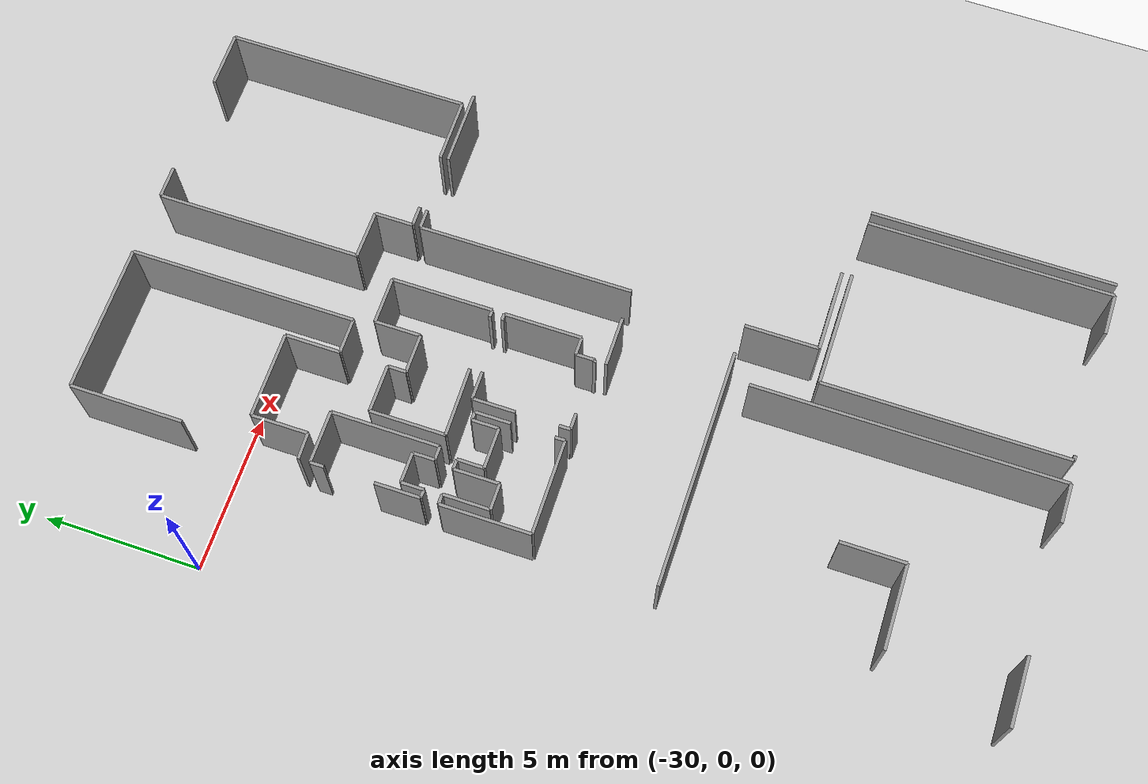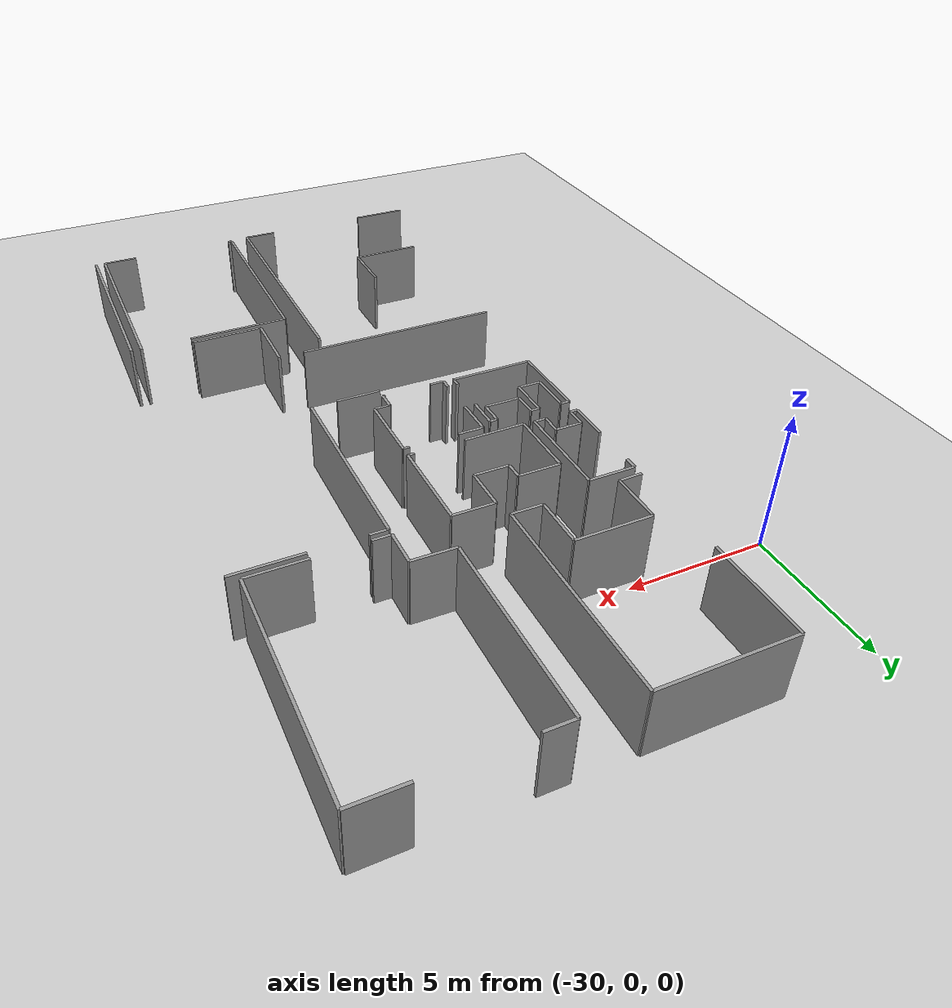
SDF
<sdf version="1.6">
 <world name="default">
  <model name="ground_plane">
   <static>1</static>
   <link name="link">
    <collision name="collision">
     <geometry><plane><normal>0 0 1</normal><size>100 100</size></plane></geometry>
     <surface><friction><ode><mu>100</mu><mu2>50</mu2></ode></friction></surface>
    </collision>
    <visual name="visual">
     <cast_shadows>0</cast_shadows>
     <geometry><plane><normal>0 0 1</normal><size>100 100</size></plane></geometry>
     <material>
      <script><uri>file://media/materials/scripts/gazebo.material</uri><name>Gazebo/Grey</name></script>
     </material>
    </visual>
   </link>
  </model>
  <model name="0510035343_A_40_1_102">
   <static>1</static>
   <link name="Wall_206">
    <collision name="Wall_206_Collision">
     <geometry><box><size>9.78107842204 0.1 2.5</size></box></geometry>
     <pose>4.89053921102 0 1.25 0 0 0</pose>
    </collision>
    <visual name="Wall_206_Visual">
     <pose>4.89053921102 0 1.25 0 0 0</pose>
     <geometry><box><size>9.78107842204 0.1 2.5</size></box></geometry>
     <material>
      <script><uri>file://media/materials/scripts/gazebo.material</uri><name>Gazebo/Grey</name></script>
      <ambient>1 1 1 1</ambient>
     </material>
    </visual>
    <pose>96.7230949887 -38.3141324701 0 0 0 -1.57079632679</pose>
   </link>
   <link name="Wall_207">
    <collision name="Wall_207_Collision">
     <geometry><box><size>1.25703767178 0.1 2.5</size></box></geometry>
     <pose>0.628518835888 0 1.25 0 0 0</pose>
    </collision>
    <visual name="Wall_207_Visual">
     <pose>0.628518835888 0 1.25 0 0 0</pose>
     <geometry><box><size>1.25703767178 0.1 2.5</size></box></geometry>
     <material>
      <script><uri>file://media/materials/scripts/gazebo.material</uri><name>Gazebo/Grey</name></script>
      <ambient>1 1 1 1</ambient>
     </material>
    </visual>
    <pose>96.7230949887 -48.0952108921 0 0 0 3.14159265359</pose>
   </link>
   <link name="Wall_208">
    <collision name="Wall_208_Collision">
     <geometry><box><size>2.1692849662 0.1 2.5</size></box></geometry>
     <pose>1.0846424831 0 1.25 0 0 0</pose>
    </collision>
    <visual name="Wall_208_Visual">
     <pose>1.0846424831 0 1.25 0 0 0</pose>
     <geometry><box><size>2.1692849662 0.1 2.5</size></box></geometry>
     <material>
      <script><uri>file://media/materials/scripts/gazebo.material</uri><name>Gazebo/Grey</name></script>
      <ambient>1 1 1 1</ambient>
     </material>
    </visual>
    <pose>91.3575168999 -48.0952108921 0 0 0 3.14159265359</pose>
   </link>
   <link name="Wall_223">
    <collision name="Wall_223_Collision">
     <geometry><box><size>1.59395728205 0.1 2.5</size></box></geometry>
     <pose>0.796978641023 0 1.25 0 0 0</pose>
    </collision>
    <visual name="Wall_223_Visual">
     <pose>0.796978641023 0 1.25 0 0 0</pose>
     <geometry><box><size>1.59395728205 0.1 2.5</size></box></geometry>
     <material>
      <script><uri>file://media/materials/scripts/gazebo.material</uri><name>Gazebo/Grey</name></script>
      <ambient>1 1 1 1</ambient>
     </material>
    </visual>
    <pose>95.9898441715 -34.0738201784 0 0 0 0.0</pose>
   </link>
   <link name="Wall_224">
    <collision name="Wall_224_Collision">
     <geometry><box><size>7.61408786827 0.1 2.5</size></box></geometry>
     <pose>3.80704393413 0 1.25 0 0 0</pose>
    </collision>
    <visual name="Wall_224_Visual">
     <pose>3.80704393413 0 1.25 0 0 0</pose>
     <geometry><box><size>7.61408786827 0.1 2.5</size></box></geometry>
     <material>
      <script><uri>file://media/materials/scripts/gazebo.material</uri><name>Gazebo/Grey</name></script>
      <ambient>1 1 1 1</ambient>
     </material>
    </visual>
    <pose>97.5838014536 -37.6189660097 0 0 0 3.14002541355</pose>
   </link>
   <link name="Wall_226">
    <collision name="Wall_226_Collision">
     <geometry><box><size>3.59008537243 0.1 2.5</size></box></geometry>
     <pose>1.79504268622 0 1.25 0 0 0</pose>
    </collision>
    <visual name="Wall_226_Visual">
     <pose>1.79504268622 0 1.25 0 0 0</pose>
     <geometry><box><size>3.59008537243 0.1 2.5</size></box></geometry>
     <material>
      <script><uri>file://media/materials/scripts/gazebo.material</uri><name>Gazebo/Grey</name></script>
      <ambient>1 1 1 1</ambient>
     </material>
    </visual>
    <pose>90.2804912882 -22.7536259481 0 0 0 1.57079632679</pose>
   </link>
   <link name="Wall_227">
    <collision name="Wall_227_Collision">
     <geometry><box><size>4.66711098416 0.1 2.5</size></box></geometry>
     <pose>2.33355549208 0 1.25 0 0 0</pose>
    </collision>
    <visual name="Wall_227_Visual">
     <pose>2.33355549208 0 1.25 0 0 0</pose>
     <geometry><box><size>4.66711098416 0.1 2.5</size></box></geometry>
     <material>
      <script><uri>file://media/materials/scripts/gazebo.material</uri><name>Gazebo/Grey</name></script>
      <ambient>1 1 1 1</ambient>
     </material>
    </visual>
    <pose>90.2804912882 -19.1635405757 0 0 0 0.0</pose>
   </link>
   <link name="Wall_228">
    <collision name="Wall_228_Collision">
     <geometry><box><size>7.21850899743 0.1 2.5</size></box></geometry>
     <pose>3.60925449871 0 1.25 0 0 0</pose>
    </collision>
    <visual name="Wall_228_Visual">
     <pose>3.60925449871 0 1.25 0 0 0</pose>
     <geometry><box><size>7.21850899743 0.1 2.5</size></box></geometry>
     <material>
      <script><uri>file://media/materials/scripts/gazebo.material</uri><name>Gazebo/Grey</name></script>
      <ambient>1 1 1 1</ambient>
     </material>
    </visual>
    <pose>94.9476022724 -19.1635405757 0 0 0 -1.57079632679</pose>
   </link>
   <link name="Wall_229">
    <collision name="Wall_229_Collision">
     <geometry><box><size>1.11485607287 0.1 2.5</size></box></geometry>
     <pose>0.557428036434 0 1.25 0 0 0</pose>
    </collision>
    <visual name="Wall_229_Visual">
     <pose>0.557428036434 0 1.25 0 0 0</pose>
     <geometry><box><size>1.11485607287 0.1 2.5</size></box></geometry>
     <material>
      <script><uri>file://media/materials/scripts/gazebo.material</uri><name>Gazebo/Grey</name></script>
      <ambient>1 1 1 1</ambient>
     </material>
    </visual>
    <pose>94.9476022724 -26.3820495731 0 0 0 3.14159265359</pose>
   </link>
   <link name="Wall_230">
    <collision name="Wall_230_Collision">
     <geometry><box><size>1.75848170364 0.1 2.5</size></box></geometry>
     <pose>0.87924085182 0 1.25 0 0 0</pose>
    </collision>
    <visual name="Wall_230_Visual">
     <pose>0.87924085182 0 1.25 0 0 0</pose>
     <geometry><box><size>1.75848170364 0.1 2.5</size></box></geometry>
     <material>
      <script><uri>file://media/materials/scripts/gazebo.material</uri><name>Gazebo/Grey</name></script>
      <ambient>1 1 1 1</ambient>
     </material>
    </visual>
    <pose>93.8327461995 -26.3820495731 0 0 0 1.57079632679</pose>
   </link>
   <link name="Wall_231">
    <collision name="Wall_231_Collision">
     <geometry><box><size>2.7146529563 0.1 2.5</size></box></geometry>
     <pose>1.35732647815 0 1.25 0 0 0</pose>
    </collision>
    <visual name="Wall_231_Visual">
     <pose>1.35732647815 0 1.25 0 0 0</pose>
     <geometry><box><size>2.7146529563 0.1 2.5</size></box></geometry>
     <material>
      <script><uri>file://media/materials/scripts/gazebo.material</uri><name>Gazebo/Grey</name></script>
      <ambient>1 1 1 1</ambient>
     </material>
    </visual>
    <pose>93.8327461995 -24.6235678695 0 0 0 3.14159265359</pose>
   </link>
   <link name="Wall_232">
    <collision name="Wall_232_Collision">
     <geometry><box><size>1.80012060046 0.1 2.5</size></box></geometry>
     <pose>0.900060300232 0 1.25 0 0 0</pose>
    </collision>
    <visual name="Wall_232_Visual">
     <pose>0.900060300232 0 1.25 0 0 0</pose>
     <geometry><box><size>1.80012060046 0.1 2.5</size></box></geometry>
     <material>
      <script><uri>file://media/materials/scripts/gazebo.material</uri><name>Gazebo/Grey</name></script>
      <ambient>1 1 1 1</ambient>
     </material>
    </visual>
    <pose>91.1180932432 -24.6235678695 0 0 0 -1.57079632679</pose>
   </link>
   <link name="Wall_233">
    <collision name="Wall_233_Collision">
     <geometry><box><size>0.837941901549 0.1 2.5</size></box></geometry>
     <pose>0.418970950775 0 1.25 0 0 0</pose>
    </collision>
    <visual name="Wall_233_Visual">
     <pose>0.418970950775 0 1.25 0 0 0</pose>
     <geometry><box><size>0.837941901549 0.1 2.5</size></box></geometry>
     <material>
      <script><uri>file://media/materials/scripts/gazebo.material</uri><name>Gazebo/Grey</name></script>
      <ambient>1 1 1 1</ambient>
     </material>
    </visual>
    <pose>91.1180932432 -26.42368847 0 0 0 -3.11310687804</pose>
   </link>
   <link name="Wall_234">
    <collision name="Wall_234_Collision">
     <geometry><box><size>1.44136595893 0.1 2.5</size></box></geometry>
     <pose>0.720682979466 0 1.25 0 0 0</pose>
    </collision>
    <visual name="Wall_234_Visual">
     <pose>0.720682979466 0 1.25 0 0 0</pose>
     <geometry><box><size>1.44136595893 0.1 2.5</size></box></geometry>
     <material>
      <script><uri>file://media/materials/scripts/gazebo.material</uri><name>Gazebo/Grey</name></script>
      <ambient>1 1 1 1</ambient>
     </material>
    </visual>
    <pose>90.2914088038 -30.2646228062 0 0 0 1.57079632679</pose>
   </link>
   <link name="Wall_235">
    <collision name="Wall_235_Collision">
     <geometry><box><size>0.429591545273 0.1 2.5</size></box></geometry>
     <pose>0.214795772636 0 1.25 0 0 0</pose>
    </collision>
    <visual name="Wall_235_Visual">
     <pose>0.214795772636 0 1.25 0 0 0</pose>
     <geometry><box><size>0.429591545273 0.1 2.5</size></box></geometry>
     <material>
      <script><uri>file://media/materials/scripts/gazebo.material</uri><name>Gazebo/Grey</name></script>
      <ambient>1 1 1 1</ambient>
     </material>
    </visual>
    <pose>90.2914088038 -27.2483417436 0 0 0 1.57079632679</pose>
   </link>
   <link name="Wall_236">
    <collision name="Wall_236_Collision">
     <geometry><box><size>1.67037989146 0.1 2.5</size></box></geometry>
     <pose>0.83518994573 0 1.25 0 0 0</pose>
    </collision>
    <visual name="Wall_236_Visual">
     <pose>0.83518994573 0 1.25 0 0 0</pose>
     <geometry><box><size>1.67037989146 0.1 2.5</size></box></geometry>
     <material>
      <script><uri>file://media/materials/scripts/gazebo.material</uri><name>Gazebo/Grey</name></script>
      <ambient>1 1 1 1</ambient>
     </material>
    </visual>
    <pose>90.2914088038 -26.8187501984 0 0 0 0.0</pose>
   </link>
   <link name="Wall_237">
    <collision name="Wall_237_Collision">
     <geometry><box><size>3.43622457076 0.1 2.5</size></box></geometry>
     <pose>1.71811228538 0 1.25 0 0 0</pose>
    </collision>
    <visual name="Wall_237_Visual">
     <pose>1.71811228538 0 1.25 0 0 0</pose>
     <geometry><box><size>3.43622457076 0.1 2.5</size></box></geometry>
     <material>
      <script><uri>file://media/materials/scripts/gazebo.material</uri><name>Gazebo/Grey</name></script>
      <ambient>1 1 1 1</ambient>
     </material>
    </visual>
    <pose>91.9617886953 -26.8187501984 0 0 0 -1.57079632679</pose>
   </link>
   <link name="Wall_238">
    <collision name="Wall_238_Collision">
     <geometry><box><size>0.438985686629 0.1 2.5</size></box></geometry>
     <pose>0.219492843315 0 1.25 0 0 0</pose>
    </collision>
    <visual name="Wall_238_Visual">
     <pose>0.219492843315 0 1.25 0 0 0</pose>
     <geometry><box><size>0.438985686629 0.1 2.5</size></box></geometry>
     <material>
      <script><uri>file://media/materials/scripts/gazebo.material</uri><name>Gazebo/Grey</name></script>
      <ambient>1 1 1 1</ambient>
     </material>
    </visual>
    <pose>91.9617886953 -30.2549747691 0 0 0 3.14159265359</pose>
   </link>
   <link name="Wall_239">
    <collision name="Wall_239_Collision">
     <geometry><box><size>0.69668983465 0.1 2.5</size></box></geometry>
     <pose>0.348344917325 0 1.25 0 0 0</pose>
    </collision>
    <visual name="Wall_239_Visual">
     <pose>0.348344917325 0 1.25 0 0 0</pose>
     <geometry><box><size>0.69668983465 0.1 2.5</size></box></geometry>
     <material>
      <script><uri>file://media/materials/scripts/gazebo.material</uri><name>Gazebo/Grey</name></script>
      <ambient>1 1 1 1</ambient>
     </material>
    </visual>
    <pose>91.5228030087 -30.2549747691 0 0 0 1.57079632679</pose>
   </link>
   <link name="Wall_240">
    <collision name="Wall_240_Collision">
     <geometry><box><size>0.96404201974 0.1 2.5</size></box></geometry>
     <pose>0.48202100987 0 1.25 0 0 0</pose>
    </collision>
    <visual name="Wall_240_Visual">
     <pose>0.48202100987 0 1.25 0 0 0</pose>
     <geometry><box><size>0.96404201974 0.1 2.5</size></box></geometry>
     <material>
      <script><uri>file://media/materials/scripts/gazebo.material</uri><name>Gazebo/Grey</name></script>
      <ambient>1 1 1 1</ambient>
     </material>
    </visual>
    <pose>91.5228030087 -29.5582849345 0 0 0 3.14159265359</pose>
   </link>
   <link name="Wall_241">
    <collision name="Wall_241_Collision">
     <geometry><box><size>0.715732013076 0.1 2.5</size></box></geometry>
     <pose>0.357866006538 0 1.25 0 0 0</pose>
    </collision>
    <visual name="Wall_241_Visual">
     <pose>0.357866006538 0 1.25 0 0 0</pose>
     <geometry><box><size>0.715732013076 0.1 2.5</size></box></geometry>
     <material>
      <script><uri>file://media/materials/scripts/gazebo.material</uri><name>Gazebo/Grey</name></script>
      <ambient>1 1 1 1</ambient>
     </material>
    </visual>
    <pose>90.5587609889 -29.5582849345 0 0 0 -1.57079632679</pose>
   </link>
   <link name="Wall_242">
    <collision name="Wall_242_Collision">
     <geometry><box><size>0.267517178447 0.1 2.5</size></box></geometry>
     <pose>0.133758589223 0 1.25 0 0 0</pose>
    </collision>
    <visual name="Wall_242_Visual">
     <pose>0.133758589223 0 1.25 0 0 0</pose>
     <geometry><box><size>0.267517178447 0.1 2.5</size></box></geometry>
     <material>
      <script><uri>file://media/materials/scripts/gazebo.material</uri><name>Gazebo/Grey</name></script>
      <ambient>1 1 1 1</ambient>
     </material>
    </visual>
    <pose>90.5587609889 -30.2740169475 0 0 0 3.1064694021</pose>
   </link>
   <link name="Wall_243">
    <collision name="Wall_243_Collision">
     <geometry><box><size>2.86546700943 0.1 2.5</size></box></geometry>
     <pose>1.43273350471 0 1.25 0 0 0</pose>
    </collision>
    <visual name="Wall_243_Visual">
     <pose>1.43273350471 0 1.25 0 0 0</pose>
     <geometry><box><size>2.86546700943 0.1 2.5</size></box></geometry>
     <material>
      <script><uri>file://media/materials/scripts/gazebo.material</uri><name>Gazebo/Grey</name></script>
      <ambient>1 1 1 1</ambient>
     </material>
    </visual>
    <pose>90.2804912882 -33.6932305056 0 0 0 1.57079632679</pose>
   </link>
   <link name="Wall_244">
    <collision name="Wall_244_Collision">
     <geometry><box><size>0.315592370434 0.1 2.5</size></box></geometry>
     <pose>0.157796185217 0 1.25 0 0 0</pose>
    </collision>
    <visual name="Wall_244_Visual">
     <pose>0.157796185217 0 1.25 0 0 0</pose>
     <geometry><box><size>0.315592370434 0.1 2.5</size></box></geometry>
     <material>
      <script><uri>file://media/materials/scripts/gazebo.material</uri><name>Gazebo/Grey</name></script>
      <ambient>1 1 1 1</ambient>
     </material>
    </visual>
    <pose>90.2804912882 -30.8277634961 0 0 0 0.0</pose>
   </link>
   <link name="Wall_245">
    <collision name="Wall_245_Collision">
     <geometry><box><size>1.47691135866 0.1 2.5</size></box></geometry>
     <pose>0.73845567933 0 1.25 0 0 0</pose>
    </collision>
    <visual name="Wall_245_Visual">
     <pose>0.73845567933 0 1.25 0 0 0</pose>
     <geometry><box><size>1.47691135866 0.1 2.5</size></box></geometry>
     <material>
      <script><uri>file://media/materials/scripts/gazebo.material</uri><name>Gazebo/Grey</name></script>
      <ambient>1 1 1 1</ambient>
     </material>
    </visual>
    <pose>90.5960836586 -30.8277634961 0 0 0 -1.57079632679</pose>
   </link>
   <link name="Wall_246">
    <collision name="Wall_246_Collision">
     <geometry><box><size>0.833031832175 0.1 2.5</size></box></geometry>
     <pose>0.416515916087 0 1.25 0 0 0</pose>
    </collision>
    <visual name="Wall_246_Visual">
     <pose>0.416515916087 0 1.25 0 0 0</pose>
     <geometry><box><size>0.833031832175 0.1 2.5</size></box></geometry>
     <material>
      <script><uri>file://media/materials/scripts/gazebo.material</uri><name>Gazebo/Grey</name></script>
      <ambient>1 1 1 1</ambient>
     </material>
    </visual>
    <pose>90.5960836586 -32.3046748548 0 0 0 0.0</pose>
   </link>
   <link name="Wall_247">
    <collision name="Wall_247_Collision">
     <geometry><box><size>1.43908089752 0.1 2.5</size></box></geometry>
     <pose>0.719540448761 0 1.25 0 0 0</pose>
    </collision>
    <visual name="Wall_247_Visual">
     <pose>0.719540448761 0 1.25 0 0 0</pose>
     <geometry><box><size>1.43908089752 0.1 2.5</size></box></geometry>
     <material>
      <script><uri>file://media/materials/scripts/gazebo.material</uri><name>Gazebo/Grey</name></script>
      <ambient>1 1 1 1</ambient>
     </material>
    </visual>
    <pose>91.4291154908 -32.3046748548 0 0 0 1.57079632679</pose>
   </link>
   <link name="Wall_248">
    <collision name="Wall_248_Collision">
     <geometry><box><size>0.315592370434 0.1 2.5</size></box></geometry>
     <pose>0.157796185217 0 1.25 0 0 0</pose>
    </collision>
    <visual name="Wall_248_Visual">
     <pose>0.157796185217 0 1.25 0 0 0</pose>
     <geometry><box><size>0.315592370434 0.1 2.5</size></box></geometry>
     <material>
      <script><uri>file://media/materials/scripts/gazebo.material</uri><name>Gazebo/Grey</name></script>
      <ambient>1 1 1 1</ambient>
     </material>
    </visual>
    <pose>91.4291154908 -30.8655939573 0 0 0 0.0</pose>
   </link>
   <link name="Wall_249">
    <collision name="Wall_249_Collision">
     <geometry><box><size>0.845726617792 0.1 2.5</size></box></geometry>
     <pose>0.422863308896 0 1.25 0 0 0</pose>
    </collision>
    <visual name="Wall_249_Visual">
     <pose>0.422863308896 0 1.25 0 0 0</pose>
     <geometry><box><size>0.845726617792 0.1 2.5</size></box></geometry>
     <material>
      <script><uri>file://media/materials/scripts/gazebo.material</uri><name>Gazebo/Grey</name></script>
      <ambient>1 1 1 1</ambient>
     </material>
    </visual>
    <pose>91.7447078612 -30.8655939573 0 0 0 -1.57079632679</pose>
   </link>
   <link name="Wall_250">
    <collision name="Wall_250_Collision">
     <geometry><box><size>1.30019994287 0.1 2.5</size></box></geometry>
     <pose>0.650099971437 0 1.25 0 0 0</pose>
    </collision>
    <visual name="Wall_250_Visual">
     <pose>0.650099971437 0 1.25 0 0 0</pose>
     <geometry><box><size>1.30019994287 0.1 2.5</size></box></geometry>
     <material>
      <script><uri>file://media/materials/scripts/gazebo.material</uri><name>Gazebo/Grey</name></script>
      <ambient>1 1 1 1</ambient>
     </material>
    </visual>
    <pose>91.7447078612 -31.7113205751 0 0 0 0.0</pose>
   </link>
   <link name="Wall_251">
    <collision name="Wall_251_Collision">
     <geometry><box><size>0.845726617792 0.1 2.5</size></box></geometry>
     <pose>0.422863308896 0 1.25 0 0 0</pose>
    </collision>
    <visual name="Wall_251_Visual">
     <pose>0.422863308896 0 1.25 0 0 0</pose>
     <geometry><box><size>0.845726617792 0.1 2.5</size></box></geometry>
     <material>
      <script><uri>file://media/materials/scripts/gazebo.material</uri><name>Gazebo/Grey</name></script>
      <ambient>1 1 1 1</ambient>
     </material>
    </visual>
    <pose>93.0449078041 -31.7113205751 0 0 0 1.57079632679</pose>
   </link>
   <link name="Wall_252">
    <collision name="Wall_252_Collision">
     <geometry><box><size>0.265067123679 0.1 2.5</size></box></geometry>
     <pose>0.132533561839 0 1.25 0 0 0</pose>
    </collision>
    <visual name="Wall_252_Visual">
     <pose>0.132533561839 0 1.25 0 0 0</pose>
     <geometry><box><size>0.265067123679 0.1 2.5</size></box></geometry>
     <material>
      <script><uri>file://media/materials/scripts/gazebo.material</uri><name>Gazebo/Grey</name></script>
      <ambient>1 1 1 1</ambient>
     </material>
    </visual>
    <pose>93.0449078041 -30.8655939573 0 0 0 0.0</pose>
   </link>
   <link name="Wall_253">
    <collision name="Wall_253_Collision">
     <geometry><box><size>1.12348852709 0.1 2.5</size></box></geometry>
     <pose>0.561744263544 0 1.25 0 0 0</pose>
    </collision>
    <visual name="Wall_253_Visual">
     <pose>0.561744263544 0 1.25 0 0 0</pose>
     <geometry><box><size>1.12348852709 0.1 2.5</size></box></geometry>
     <material>
      <script><uri>file://media/materials/scripts/gazebo.material</uri><name>Gazebo/Grey</name></script>
      <ambient>1 1 1 1</ambient>
     </material>
    </visual>
    <pose>93.3099749278 -30.8655939573 0 0 0 -1.57079632679</pose>
   </link>
   <link name="Wall_254">
    <collision name="Wall_254_Collision">
     <geometry><box><size>0.323717033229 0.1 2.5</size></box></geometry>
     <pose>0.161858516614 0 1.25 0 0 0</pose>
    </collision>
    <visual name="Wall_254_Visual">
     <pose>0.161858516614 0 1.25 0 0 0</pose>
     <geometry><box><size>0.323717033229 0.1 2.5</size></box></geometry>
     <material>
      <script><uri>file://media/materials/scripts/gazebo.material</uri><name>Gazebo/Grey</name></script>
      <ambient>1 1 1 1</ambient>
     </material>
    </visual>
    <pose>93.3099749278 -33.3591037481 0 0 0 -1.57079632679</pose>
   </link>
   <link name="Wall_255">
    <collision name="Wall_255_Collision">
     <geometry><box><size>3.02950152417 0.1 2.5</size></box></geometry>
     <pose>1.51475076208 0 1.25 0 0 0</pose>
    </collision>
    <visual name="Wall_255_Visual">
     <pose>1.51475076208 0 1.25 0 0 0</pose>
     <geometry><box><size>3.02950152417 0.1 2.5</size></box></geometry>
     <material>
      <script><uri>file://media/materials/scripts/gazebo.material</uri><name>Gazebo/Grey</name></script>
      <ambient>1 1 1 1</ambient>
     </material>
    </visual>
    <pose>93.3099749278 -33.6828207814 0 0 0 -3.138156529</pose>
   </link>
   <link name="Wall_256">
    <collision name="Wall_256_Collision">
     <geometry><box><size>0.362055285791 0.1 2.5</size></box></geometry>
     <pose>0.181027642896 0 1.25 0 0 0</pose>
    </collision>
    <visual name="Wall_256_Visual">
     <pose>0.181027642896 0 1.25 0 0 0</pose>
     <geometry><box><size>0.362055285791 0.1 2.5</size></box></geometry>
     <material>
      <script><uri>file://media/materials/scripts/gazebo.material</uri><name>Gazebo/Grey</name></script>
      <ambient>1 1 1 1</ambient>
     </material>
    </visual>
    <pose>93.6908184963 -33.7211590339 0 0 0 1.57079632679</pose>
   </link>
   <link name="Wall_257">
    <collision name="Wall_257_Collision">
     <geometry><box><size>1.35275635533 0.1 2.5</size></box></geometry>
     <pose>0.676378177664 0 1.25 0 0 0</pose>
    </collision>
    <visual name="Wall_257_Visual">
     <pose>0.676378177664 0 1.25 0 0 0</pose>
     <geometry><box><size>1.35275635533 0.1 2.5</size></box></geometry>
     <material>
      <script><uri>file://media/materials/scripts/gazebo.material</uri><name>Gazebo/Grey</name></script>
      <ambient>1 1 1 1</ambient>
     </material>
    </visual>
    <pose>93.6908184963 -31.9979688343 0 0 0 1.57079632679</pose>
   </link>
   <link name="Wall_258">
    <collision name="Wall_258_Collision">
     <geometry><box><size>0.895997968834 0.1 2.5</size></box></geometry>
     <pose>0.447998984417 0 1.25 0 0 0</pose>
    </collision>
    <visual name="Wall_258_Visual">
     <pose>0.447998984417 0 1.25 0 0 0</pose>
     <geometry><box><size>0.895997968834 0.1 2.5</size></box></geometry>
     <material>
      <script><uri>file://media/materials/scripts/gazebo.material</uri><name>Gazebo/Grey</name></script>
      <ambient>1 1 1 1</ambient>
     </material>
    </visual>
    <pose>93.6908184963 -30.645212479 0 0 0 0.0</pose>
   </link>
   <link name="Wall_259">
    <collision name="Wall_259_Collision">
     <geometry><box><size>0.219619791171 0.1 2.5</size></box></geometry>
     <pose>0.109809895585 0 1.25 0 0 0</pose>
    </collision>
    <visual name="Wall_259_Visual">
     <pose>0.109809895585 0 1.25 0 0 0</pose>
     <geometry><box><size>0.219619791171 0.1 2.5</size></box></geometry>
     <material>
      <script><uri>file://media/materials/scripts/gazebo.material</uri><name>Gazebo/Grey</name></script>
      <ambient>1 1 1 1</ambient>
     </material>
    </visual>
    <pose>96.3620552858 -30.645212479 0 0 0 0.0</pose>
   </link>
   <link name="Wall_260">
    <collision name="Wall_260_Collision">
     <geometry><box><size>2.46380399251 0.1 2.5</size></box></geometry>
     <pose>1.23190199626 0 1.25 0 0 0</pose>
    </collision>
    <visual name="Wall_260_Visual">
     <pose>1.23190199626 0 1.25 0 0 0</pose>
     <geometry><box><size>2.46380399251 0.1 2.5</size></box></geometry>
     <material>
      <script><uri>file://media/materials/scripts/gazebo.material</uri><name>Gazebo/Grey</name></script>
      <ambient>1 1 1 1</ambient>
     </material>
    </visual>
    <pose>96.581675077 -30.645212479 0 0 0 -1.57079632679</pose>
   </link>
   <link name="Wall_261">
    <collision name="Wall_261_Collision">
     <geometry><box><size>0.563140689962 0.1 2.5</size></box></geometry>
     <pose>0.281570344981 0 1.25 0 0 0</pose>
    </collision>
    <visual name="Wall_261_Visual">
     <pose>0.281570344981 0 1.25 0 0 0</pose>
     <geometry><box><size>0.563140689962 0.1 2.5</size></box></geometry>
     <material>
      <script><uri>file://media/materials/scripts/gazebo.material</uri><name>Gazebo/Grey</name></script>
      <ambient>1 1 1 1</ambient>
     </material>
    </visual>
    <pose>96.581675077 -33.1090164715 0 0 0 3.14159265359</pose>
   </link>
   <link name="Wall_262">
    <collision name="Wall_262_Collision">
     <geometry><box><size>0.610873083881 0.1 2.5</size></box></geometry>
     <pose>0.30543654194 0 1.25 0 0 0</pose>
    </collision>
    <visual name="Wall_262_Visual">
     <pose>0.30543654194 0 1.25 0 0 0</pose>
     <geometry><box><size>0.610873083881 0.1 2.5</size></box></geometry>
     <material>
      <script><uri>file://media/materials/scripts/gazebo.material</uri><name>Gazebo/Grey</name></script>
      <ambient>1 1 1 1</ambient>
     </material>
    </visual>
    <pose>96.018534387 -33.1090164715 0 0 0 -1.57079632679</pose>
   </link>
   <link name="Wall_263">
    <collision name="Wall_263_Collision">
     <geometry><box><size>0.0764226094132 0.1 2.5</size></box></geometry>
     <pose>0.0382113047066 0 1.25 0 0 0</pose>
    </collision>
    <visual name="Wall_263_Visual">
     <pose>0.0382113047066 0 1.25 0 0 0</pose>
     <geometry><box><size>0.0764226094132 0.1 2.5</size></box></geometry>
     <material>
      <script><uri>file://media/materials/scripts/gazebo.material</uri><name>Gazebo/Grey</name></script>
      <ambient>1 1 1 1</ambient>
     </material>
    </visual>
    <pose>96.018534387 -33.7198895554 0 0 0 3.14159265359</pose>
   </link>
   <link name="Wall_264">
    <collision name="Wall_264_Collision">
     <geometry><box><size>0.519218283655 0.1 2.5</size></box></geometry>
     <pose>0.259609141827 0 1.25 0 0 0</pose>
    </collision>
    <visual name="Wall_264_Visual">
     <pose>0.259609141827 0 1.25 0 0 0</pose>
     <geometry><box><size>0.519218283655 0.1 2.5</size></box></geometry>
     <material>
      <script><uri>file://media/materials/scripts/gazebo.material</uri><name>Gazebo/Grey</name></script>
      <ambient>1 1 1 1</ambient>
     </material>
    </visual>
    <pose>94.210035228 -33.7198895554 0 0 0 -3.13914767069</pose>
   </link>
   <link name="Wall_265">
    <collision name="Wall_265_Collision">
     <geometry><box><size>2.39042813164 0.1 2.5</size></box></geometry>
     <pose>1.19521406582 0 1.25 0 0 0</pose>
    </collision>
    <visual name="Wall_265_Visual">
     <pose>1.19521406582 0 1.25 0 0 0</pose>
     <geometry><box><size>2.39042813164 0.1 2.5</size></box></geometry>
     <material>
      <script><uri>file://media/materials/scripts/gazebo.material</uri><name>Gazebo/Grey</name></script>
      <ambient>1 1 1 1</ambient>
     </material>
    </visual>
    <pose>92.3540575709 -30.2882351074 0 0 0 1.57079632679</pose>
   </link>
   <link name="Wall_266">
    <collision name="Wall_266_Collision">
     <geometry><box><size>1.5106794884 0.1 2.5</size></box></geometry>
     <pose>0.7553397442 0 1.25 0 0 0</pose>
    </collision>
    <visual name="Wall_266_Visual">
     <pose>0.7553397442 0 1.25 0 0 0</pose>
     <geometry><box><size>1.5106794884 0.1 2.5</size></box></geometry>
     <material>
      <script><uri>file://media/materials/scripts/gazebo.material</uri><name>Gazebo/Grey</name></script>
      <ambient>1 1 1 1</ambient>
     </material>
    </visual>
    <pose>92.3540575709 -27.8978069758 0 0 0 0.0</pose>
   </link>
   <link name="Wall_267">
    <collision name="Wall_267_Collision">
     <geometry><box><size>0.589291948332 0.1 2.5</size></box></geometry>
     <pose>0.294645974166 0 1.25 0 0 0</pose>
    </collision>
    <visual name="Wall_267_Visual">
     <pose>0.294645974166 0 1.25 0 0 0</pose>
     <geometry><box><size>0.589291948332 0.1 2.5</size></box></geometry>
     <material>
      <script><uri>file://media/materials/scripts/gazebo.material</uri><name>Gazebo/Grey</name></script>
      <ambient>1 1 1 1</ambient>
     </material>
    </visual>
    <pose>93.8647370593 -27.8978069758 0 0 0 -1.57079632679</pose>
   </link>
   <link name="Wall_268">
    <collision name="Wall_268_Collision">
     <geometry><box><size>1.24485067758 0.1 2.5</size></box></geometry>
     <pose>0.622425338792 0 1.25 0 0 0</pose>
    </collision>
    <visual name="Wall_268_Visual">
     <pose>0.622425338792 0 1.25 0 0 0</pose>
     <geometry><box><size>1.24485067758 0.1 2.5</size></box></geometry>
     <material>
      <script><uri>file://media/materials/scripts/gazebo.material</uri><name>Gazebo/Grey</name></script>
      <ambient>1 1 1 1</ambient>
     </material>
    </visual>
    <pose>93.8647370593 -28.4870989241 0 0 0 0.0</pose>
   </link>
   <link name="Wall_269">
    <collision name="Wall_269_Collision">
     <geometry><box><size>1.46066203307 0.1 2.5</size></box></geometry>
     <pose>0.730331016535 0 1.25 0 0 0</pose>
    </collision>
    <visual name="Wall_269_Visual">
     <pose>0.730331016535 0 1.25 0 0 0</pose>
     <geometry><box><size>1.46066203307 0.1 2.5</size></box></geometry>
     <material>
      <script><uri>file://media/materials/scripts/gazebo.material</uri><name>Gazebo/Grey</name></script>
      <ambient>1 1 1 1</ambient>
     </material>
    </visual>
    <pose>95.1095877368 -28.4870989241 0 0 0 1.57079632679</pose>
   </link>
   <link name="Wall_270">
    <collision name="Wall_270_Collision">
     <geometry><box><size>1.47741915008 0.1 2.5</size></box></geometry>
     <pose>0.738709575042 0 1.25 0 0 0</pose>
    </collision>
    <visual name="Wall_270_Visual">
     <pose>0.738709575042 0 1.25 0 0 0</pose>
     <geometry><box><size>1.47741915008 0.1 2.5</size></box></geometry>
     <material>
      <script><uri>file://media/materials/scripts/gazebo.material</uri><name>Gazebo/Grey</name></script>
      <ambient>1 1 1 1</ambient>
     </material>
    </visual>
    <pose>95.1095877368 -27.026436891 0 0 0 0.0</pose>
   </link>
   <link name="Wall_271">
    <collision name="Wall_271_Collision">
     <geometry><box><size>3.22853787807 0.1 2.5</size></box></geometry>
     <pose>1.61426893903 0 1.25 0 0 0</pose>
    </collision>
    <visual name="Wall_271_Visual">
     <pose>1.61426893903 0 1.25 0 0 0</pose>
     <geometry><box><size>3.22853787807 0.1 2.5</size></box></geometry>
     <material>
      <script><uri>file://media/materials/scripts/gazebo.material</uri><name>Gazebo/Grey</name></script>
      <ambient>1 1 1 1</ambient>
     </material>
    </visual>
    <pose>96.5870068869 -27.026436891 0 0 0 -1.57079632679</pose>
   </link>
   <link name="Wall_272">
    <collision name="Wall_272_Collision">
     <geometry><box><size>0.232314576788 0.1 2.5</size></box></geometry>
     <pose>0.116157288394 0 1.25 0 0 0</pose>
    </collision>
    <visual name="Wall_272_Visual">
     <pose>0.116157288394 0 1.25 0 0 0</pose>
     <geometry><box><size>0.232314576788 0.1 2.5</size></box></geometry>
     <material>
      <script><uri>file://media/materials/scripts/gazebo.material</uri><name>Gazebo/Grey</name></script>
      <ambient>1 1 1 1</ambient>
     </material>
    </visual>
    <pose>96.5870068869 -30.2549747691 0 0 0 3.14159265359</pose>
   </link>
   <link name="Wall_273">
    <collision name="Wall_273_Collision">
     <geometry><box><size>2.20431962086 0.1 2.5</size></box></geometry>
     <pose>1.10215981043 0 1.25 0 0 0</pose>
    </collision>
    <visual name="Wall_273_Visual">
     <pose>1.10215981043 0 1.25 0 0 0</pose>
     <geometry><box><size>2.20431962086 0.1 2.5</size></box></geometry>
     <material>
      <script><uri>file://media/materials/scripts/gazebo.material</uri><name>Gazebo/Grey</name></script>
      <ambient>1 1 1 1</ambient>
     </material>
    </visual>
    <pose>94.5581262496 -30.2549747691 0 0 0 -3.12650337153</pose>
   </link>
   <link name="Wall_274">
    <collision name="Wall_274_Collision">
     <geometry><box><size>2.33761782348 0.1 2.5</size></box></geometry>
     <pose>1.16880891174 0 1.25 0 0 0</pose>
    </collision>
    <visual name="Wall_274_Visual">
     <pose>1.16880891174 0 1.25 0 0 0</pose>
     <geometry><box><size>2.33761782348 0.1 2.5</size></box></geometry>
     <material>
      <script><uri>file://media/materials/scripts/gazebo.material</uri><name>Gazebo/Grey</name></script>
      <ambient>1 1 1 1</ambient>
     </material>
    </visual>
    <pose>98.5214383192 -39.9819734044 0 0 0 1.57079632679</pose>
   </link>
   <link name="Wall_275">
    <collision name="Wall_275_Collision">
     <geometry><box><size>6.83944269891 0.1 2.5</size></box></geometry>
     <pose>3.41972134946 0 1.25 0 0 0</pose>
    </collision>
    <visual name="Wall_275_Visual">
     <pose>3.41972134946 0 1.25 0 0 0</pose>
     <geometry><box><size>6.83944269891 0.1 2.5</size></box></geometry>
     <material>
      <script><uri>file://media/materials/scripts/gazebo.material</uri><name>Gazebo/Grey</name></script>
      <ambient>1 1 1 1</ambient>
     </material>
    </visual>
    <pose>98.5214383192 -34.0613792885 0 0 0 1.57079632679</pose>
   </link>
   <link name="Wall_276">
    <collision name="Wall_276_Collision">
     <geometry><box><size>0.609857501031 0.1 2.5</size></box></geometry>
     <pose>0.304928750516 0 1.25 0 0 0</pose>
    </collision>
    <visual name="Wall_276_Visual">
     <pose>0.304928750516 0 1.25 0 0 0</pose>
     <geometry><box><size>0.609857501031 0.1 2.5</size></box></geometry>
     <material>
      <script><uri>file://media/materials/scripts/gazebo.material</uri><name>Gazebo/Grey</name></script>
      <ambient>1 1 1 1</ambient>
     </material>
    </visual>
    <pose>98.5214383192 -27.2219365895 0 0 0 0.0</pose>
   </link>
   <link name="Wall_277">
    <collision name="Wall_277_Collision">
     <geometry><box><size>2.39829889873 0.1 2.5</size></box></geometry>
     <pose>1.19914944936 0 1.25 0 0 0</pose>
    </collision>
    <visual name="Wall_277_Visual">
     <pose>1.19914944936 0 1.25 0 0 0</pose>
     <geometry><box><size>2.39829889873 0.1 2.5</size></box></geometry>
     <material>
      <script><uri>file://media/materials/scripts/gazebo.material</uri><name>Gazebo/Grey</name></script>
      <ambient>1 1 1 1</ambient>
     </material>
    </visual>
    <pose>101.022818877 -27.2219365895 0 0 0 0.0</pose>
   </link>
   <link name="Wall_298">
    <collision name="Wall_298_Collision">
     <geometry><box><size>2.62963771602 0.1 2.5</size></box></geometry>
     <pose>1.31481885801 0 1.25 0 0 0</pose>
    </collision>
    <visual name="Wall_298_Visual">
     <pose>1.31481885801 0 1.25 0 0 0</pose>
     <geometry><box><size>2.62963771602 0.1 2.5</size></box></geometry>
     <material>
      <script><uri>file://media/materials/scripts/gazebo.material</uri><name>Gazebo/Grey</name></script>
      <ambient>1 1 1 1</ambient>
     </material>
    </visual>
    <pose>101.151036212 -39.9675013488 0 0 0 -3.13608918497</pose>
   </link>
   <link name="Wall_299">
    <collision name="Wall_299_Collision">
     <geometry><box><size>6.51318670856 0.1 2.5</size></box></geometry>
     <pose>3.25659335428 0 1.25 0 0 0</pose>
    </collision>
    <visual name="Wall_299_Visual">
     <pose>3.25659335428 0 1.25 0 0 0</pose>
     <geometry><box><size>6.51318670856 0.1 2.5</size></box></geometry>
     <material>
      <script><uri>file://media/materials/scripts/gazebo.material</uri><name>Gazebo/Grey</name></script>
      <ambient>1 1 1 1</ambient>
     </material>
    </visual>
    <pose>96.9973023581 -25.712272684 0 0 0 1.57079632679</pose>
   </link>
   <link name="Wall_300">
    <collision name="Wall_300_Collision">
     <geometry><box><size>0.996540670919 0.1 2.5</size></box></geometry>
     <pose>0.49827033546 0 1.25 0 0 0</pose>
    </collision>
    <visual name="Wall_300_Visual">
     <pose>0.49827033546 0 1.25 0 0 0</pose>
     <geometry><box><size>0.996540670919 0.1 2.5</size></box></geometry>
     <material>
      <script><uri>file://media/materials/scripts/gazebo.material</uri><name>Gazebo/Grey</name></script>
      <ambient>1 1 1 1</ambient>
     </material>
    </visual>
    <pose>96.9973023581 -19.1990859754 0 0 0 0.0</pose>
   </link>
   <link name="Wall_301">
    <collision name="Wall_301_Collision">
     <geometry><box><size>1.7452791266 0.1 2.5</size></box></geometry>
     <pose>0.872639563299 0 1.25 0 0 0</pose>
    </collision>
    <visual name="Wall_301_Visual">
     <pose>0.872639563299 0 1.25 0 0 0</pose>
     <geometry><box><size>1.7452791266 0.1 2.5</size></box></geometry>
     <material>
      <script><uri>file://media/materials/scripts/gazebo.material</uri><name>Gazebo/Grey</name></script>
      <ambient>1 1 1 1</ambient>
     </material>
    </visual>
    <pose>101.286616522 -19.1990859754 0 0 0 0.0</pose>
   </link>
   <link name="Wall_302">
    <collision name="Wall_302_Collision">
     <geometry><box><size>7.7714938589 0.1 2.5</size></box></geometry>
     <pose>3.88574692945 0 1.25 0 0 0</pose>
    </collision>
    <visual name="Wall_302_Visual">
     <pose>3.88574692945 0 1.25 0 0 0</pose>
     <geometry><box><size>7.7714938589 0.1 2.5</size></box></geometry>
     <material>
      <script><uri>file://media/materials/scripts/gazebo.material</uri><name>Gazebo/Grey</name></script>
      <ambient>1 1 1 1</ambient>
     </material>
    </visual>
    <pose>103.031895649 -19.1990859754 0 0 0 -1.57079632679</pose>
   </link>
   <link name="Wall_303">
    <collision name="Wall_303_Collision">
     <geometry><box><size>2.01948649592 0.1 2.5</size></box></geometry>
     <pose>1.00974324796 0 1.25 0 0 0</pose>
    </collision>
    <visual name="Wall_303_Visual">
     <pose>1.00974324796 0 1.25 0 0 0</pose>
     <geometry><box><size>2.01948649592 0.1 2.5</size></box></geometry>
     <material>
      <script><uri>file://media/materials/scripts/gazebo.material</uri><name>Gazebo/Grey</name></script>
      <ambient>1 1 1 1</ambient>
     </material>
    </visual>
    <pose>103.031895649 -26.9705798343 0 0 0 3.14159265359</pose>
   </link>
   <link name="Wall_304">
    <collision name="Wall_304_Collision">
     <geometry><box><size>0.638801612238 0.1 2.5</size></box></geometry>
     <pose>0.319400806119 0 1.25 0 0 0</pose>
    </collision>
    <visual name="Wall_304_Visual">
     <pose>0.319400806119 0 1.25 0 0 0</pose>
     <geometry><box><size>0.638801612238 0.1 2.5</size></box></geometry>
     <material>
      <script><uri>file://media/materials/scripts/gazebo.material</uri><name>Gazebo/Grey</name></script>
      <ambient>1 1 1 1</ambient>
     </material>
    </visual>
    <pose>99.1602399314 -26.9705798343 0 0 0 3.14159265359</pose>
   </link>
   <link name="Wall_305">
    <collision name="Wall_305_Collision">
     <geometry><box><size>1.22936303913 0.1 2.5</size></box></geometry>
     <pose>0.614681519566 0 1.25 0 0 0</pose>
    </collision>
    <visual name="Wall_305_Visual">
     <pose>0.614681519566 0 1.25 0 0 0</pose>
     <geometry><box><size>1.22936303913 0.1 2.5</size></box></geometry>
     <material>
      <script><uri>file://media/materials/scripts/gazebo.material</uri><name>Gazebo/Grey</name></script>
      <ambient>1 1 1 1</ambient>
     </material>
    </visual>
    <pose>98.5214383192 -26.9705798343 0 0 0 1.57079632679</pose>
   </link>
   <link name="Wall_306">
    <collision name="Wall_306_Collision">
     <geometry><box><size>1.52441076802 0.1 2.5</size></box></geometry>
     <pose>0.76220538401 0 1.25 0 0 0</pose>
    </collision>
    <visual name="Wall_306_Visual">
     <pose>0.76220538401 0 1.25 0 0 0</pose>
     <geometry><box><size>1.52441076802 0.1 2.5</size></box></geometry>
     <material>
      <script><uri>file://media/materials/scripts/gazebo.material</uri><name>Gazebo/Grey</name></script>
      <ambient>1 1 1 1</ambient>
     </material>
    </visual>
    <pose>98.5214383192 -25.7412167952 0 0 0 3.12260443126</pose>
   </link>
   <link name="Wall_372">
    <collision name="Wall_372_Collision">
     <geometry><box><size>7.73010885779 0.1 2.5</size></box></geometry>
     <pose>3.86505442889 0 1.25 0 0 0</pose>
    </collision>
    <visual name="Wall_372_Visual">
     <pose>3.86505442889 0 1.25 0 0 0</pose>
     <geometry><box><size>7.73010885779 0.1 2.5</size></box></geometry>
     <material>
      <script><uri>file://media/materials/scripts/gazebo.material</uri><name>Gazebo/Grey</name></script>
      <ambient>1 1 1 1</ambient>
     </material>
    </visual>
    <pose>103.417817132 -48.016757117 0 0 0 1.57079632679</pose>
   </link>
   <link name="Wall_377">
    <collision name="Wall_377_Collision">
     <geometry><box><size>7.73671014631 0.1 2.5</size></box></geometry>
     <pose>3.86835507315 0 1.25 0 0 0</pose>
    </collision>
    <visual name="Wall_377_Visual">
     <pose>3.86835507315 0 1.25 0 0 0</pose>
     <geometry><box><size>7.73671014631 0.1 2.5</size></box></geometry>
     <material>
      <script><uri>file://media/materials/scripts/gazebo.material</uri><name>Gazebo/Grey</name></script>
      <ambient>1 1 1 1</ambient>
     </material>
    </visual>
    <pose>97.4583769717 -48.0139642642 0 0 0 1.57079632679</pose>
   </link>
   <link name="Wall_378">
    <collision name="Wall_378_Collision">
     <geometry><box><size>3.71424037577 0.1 2.5</size></box></geometry>
     <pose>1.85712018788 0 1.25 0 0 0</pose>
    </collision>
    <visual name="Wall_378_Visual">
     <pose>1.85712018788 0 1.25 0 0 0</pose>
     <geometry><box><size>3.71424037577 0.1 2.5</size></box></geometry>
     <material>
      <script><uri>file://media/materials/scripts/gazebo.material</uri><name>Gazebo/Grey</name></script>
      <ambient>1 1 1 1</ambient>
     </material>
    </visual>
    <pose>97.4583769717 -40.2772541179 0 0 0 0.0</pose>
   </link>
   <link name="Wall_379">
    <collision name="Wall_379_Collision">
     <geometry><box><size>7.74102637342 0.1 2.5</size></box></geometry>
     <pose>3.87051318671 0 1.25 0 0 0</pose>
    </collision>
    <visual name="Wall_379_Visual">
     <pose>3.87051318671 0 1.25 0 0 0</pose>
     <geometry><box><size>7.74102637342 0.1 2.5</size></box></geometry>
     <material>
      <script><uri>file://media/materials/scripts/gazebo.material</uri><name>Gazebo/Grey</name></script>
      <ambient>1 1 1 1</ambient>
     </material>
    </visual>
    <pose>103.049160557 -40.2772541179 0 0 0 -1.57079632679</pose>
   </link>
   <link name="Wall_380">
    <collision name="Wall_380_Collision">
     <geometry><box><size>1.32457393126 0.1 2.5</size></box></geometry>
     <pose>0.662286965629 0 1.25 0 0 0</pose>
    </collision>
    <visual name="Wall_380_Visual">
     <pose>0.662286965629 0 1.25 0 0 0</pose>
     <geometry><box><size>1.32457393126 0.1 2.5</size></box></geometry>
     <material>
      <script><uri>file://media/materials/scripts/gazebo.material</uri><name>Gazebo/Grey</name></script>
      <ambient>1 1 1 1</ambient>
     </material>
    </visual>
    <pose>103.049160557 -48.0182804913 0 0 0 3.14159265359</pose>
   </link>
   <link name="Wall_381">
    <collision name="Wall_381_Collision">
     <geometry><box><size>0.157982105873 0.1 2.5</size></box></geometry>
     <pose>0.0789910529365 0 1.25 0 0 0</pose>
    </collision>
    <visual name="Wall_381_Visual">
     <pose>0.0789910529365 0 1.25 0 0 0</pose>
     <geometry><box><size>0.157982105873 0.1 2.5</size></box></geometry>
     <material>
      <script><uri>file://media/materials/scripts/gazebo.material</uri><name>Gazebo/Grey</name></script>
      <ambient>1 1 1 1</ambient>
     </material>
    </visual>
    <pose>97.6163001047 -48.0182804913 0 0 0 3.11426826624</pose>
   </link>
   <link name="Wall_727">
    <collision name="Wall_727_Collision">
     <geometry><box><size>2.03497413437 0.1 2.5</size></box></geometry>
     <pose>1.01748706719 0 1.25 0 0 0</pose>
    </collision>
    <visual name="Wall_727_Visual">
     <pose>1.01748706719 0 1.25 0 0 0</pose>
     <geometry><box><size>2.03497413437 0.1 2.5</size></box></geometry>
     <material>
      <script><uri>file://media/materials/scripts/gazebo.material</uri><name>Gazebo/Grey</name></script>
      <ambient>1 1 1 1</ambient>
     </material>
    </visual>
    <pose>92.8742898854 -42.1436414993 0 0 0 -1.57079632679</pose>
   </link>
   <link name="Wall_728">
    <collision name="Wall_728_Collision">
     <geometry><box><size>2.66297926928 0.1 2.5</size></box></geometry>
     <pose>1.33148963464 0 1.25 0 0 0</pose>
    </collision>
    <visual name="Wall_728_Visual">
     <pose>1.33148963464 0 1.25 0 0 0</pose>
     <geometry><box><size>2.66297926928 0.1 2.5</size></box></geometry>
     <material>
      <script><uri>file://media/materials/scripts/gazebo.material</uri><name>Gazebo/Grey</name></script>
      <ambient>1 1 1 1</ambient>
     </material>
    </visual>
    <pose>92.8742898854 -44.1786156336 0 0 0 -3.13205823618</pose>
   </link>
   <pose>-116.8 24.3141911835 0 0 0 0</pose>
  </model>
 </world>
</sdf>
